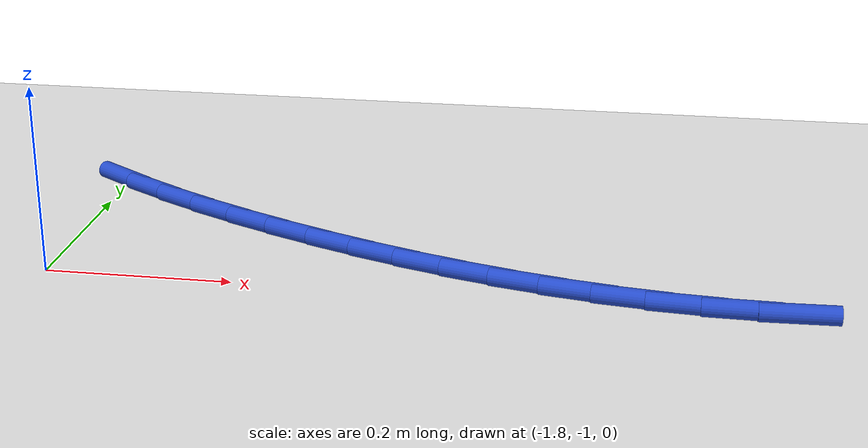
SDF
<sdf version="1.6">
 <world name="default">
  <model name="ground_plane">
   <static>1</static>
   <link name="link">
    <collision name="collision">
     <geometry><plane><normal>0 0 1</normal><size>100 100</size></plane></geometry>
     <surface><friction><ode><mu>100</mu><mu2>50</mu2></ode></friction></surface>
    </collision>
    <visual name="visual">
     <cast_shadows>0</cast_shadows>
     <geometry><plane><normal>0 0 1</normal><size>100 100</size></plane></geometry>
     <material>
      <script><uri>file://media/materials/scripts/gazebo.material</uri><name>Gazebo/WhiteGlow</name></script>
     </material>
    </visual>
   </link>
  </model>
  <model name="line">
   <link name="link_76">
    <pose>-1.800930079560088 -0.743049265808021 0.01 0 1.57 -0.5997430885723822</pose>
    <collision name="collision">
     <geometry><cylinder><radius>0.01</radius><length>0.08</length></cylinder></geometry>
    </collision>
    <visual name="visual">
     <material>
      <script><name>Gazebo/Blue</name><uri>file://media/materials/scripts/gazebo.material</uri></script>
     </material>
     <geometry><cylinder><radius>0.01</radius><length>0.08</length></cylinder></geometry>
    </visual>
   </link>
   <link name="link_77">
    <pose>-1.75485919473331 -0.7745506810042077 0.01 0 1.57 -0.5519705824732061</pose>
    <collision name="collision">
     <geometry><cylinder><radius>0.01</radius><length>0.08</length></cylinder></geometry>
    </collision>
    <visual name="visual">
     <material>
      <script><name>Gazebo/Blue</name><uri>file://media/materials/scripts/gazebo.material</uri></script>
     </material>
     <geometry><cylinder><radius>0.01</radius><length>0.08</length></cylinder></geometry>
    </visual>
   </link>
   <link name="link_78">
    <pose>-1.70699409519617 -0.8040269578421129 0.01 0 1.57 -0.5098072610907443</pose>
    <collision name="collision">
     <geometry><cylinder><radius>0.01</radius><length>0.08</length></cylinder></geometry>
    </collision>
    <visual name="visual">
     <material>
      <script><name>Gazebo/Blue</name><uri>file://media/materials/scripts/gazebo.material</uri></script>
     </material>
     <geometry><cylinder><radius>0.01</radius><length>0.08</length></cylinder></geometry>
    </visual>
   </link>
   <link name="link_79">
    <pose>-1.6577117854093895 -0.8315809781255472 0.01 0 1.57 -0.4727214098440002</pose>
    <collision name="collision">
     <geometry><cylinder><radius>0.01</radius><length>0.08</length></cylinder></geometry>
    </collision>
    <visual name="visual">
     <material>
      <script><name>Gazebo/Blue</name><uri>file://media/materials/scripts/gazebo.material</uri></script>
     </material>
     <geometry><cylinder><radius>0.01</radius><length>0.08</length></cylinder></geometry>
    </visual>
   </link>
   <link name="link_80">
    <pose>-1.6073892698336893 -0.8573156236583225 0.01 0 1.57 -0.44024191962324477</pose>
    <collision name="collision">
     <geometry><cylinder><radius>0.01</radius><length>0.08</length></cylinder></geometry>
    </collision>
    <visual name="visual">
     <material>
      <script><name>Gazebo/Blue</name><uri>file://media/materials/scripts/gazebo.material</uri></script>
     </material>
     <geometry><cylinder><radius>0.01</radius><length>0.08</length></cylinder></geometry>
    </visual>
   </link>
   <link name="link_81">
    <pose>-1.5564035529297897 -0.8813337762442501 0.01 0 1.57 -0.41137872955580856</pose>
    <collision name="collision">
     <geometry><cylinder><radius>0.01</radius><length>0.08</length></cylinder></geometry>
    </collision>
    <visual name="visual">
     <material>
      <script><name>Gazebo/Blue</name><uri>file://media/materials/scripts/gazebo.material</uri></script>
     </material>
     <geometry><cylinder><radius>0.01</radius><length>0.08</length></cylinder></geometry>
    </visual>
   </link>
   <link name="link_82">
    <pose>-1.505098104564522 -0.9037168742839103 0.01 0 1.57 -0.3812926962047439</pose>
    <collision name="collision">
     <geometry><cylinder><radius>0.01</radius><length>0.08</length></cylinder></geometry>
    </collision>
    <visual name="visual">
     <material>
      <script><name>Gazebo/Blue</name><uri>file://media/materials/scripts/gazebo.material</uri></script>
     </material>
     <geometry><cylinder><radius>0.01</radius><length>0.08</length></cylinder></geometry>
    </visual>
   </link>
   <link name="link_83">
    <pose>-1.4535568601850408 -0.9243803991595458 0.01 0 1.57 -0.347756498469362</pose>
    <collision name="collision">
     <geometry><cylinder><radius>0.01</radius><length>0.08</length></cylinder></geometry>
    </collision>
    <visual name="visual">
     <material>
      <script><name>Gazebo/Blue</name><uri>file://media/materials/scripts/gazebo.material</uri></script>
     </material>
     <geometry><cylinder><radius>0.01</radius><length>0.08</length></cylinder></geometry>
    </visual>
   </link>
   <link name="link_84">
    <pose>-1.4017426927867 -0.943162419925744 0.01 0 1.57 -0.3107151630010409</pose>
    <collision name="collision">
     <geometry><cylinder><radius>0.01</radius><length>0.08</length></cylinder></geometry>
    </collision>
    <visual name="visual">
     <material>
      <script><name>Gazebo/Blue</name><uri>file://media/materials/scripts/gazebo.material</uri></script>
     </material>
     <geometry><cylinder><radius>0.01</radius><length>0.08</length></cylinder></geometry>
    </visual>
   </link>
   <link name="link_85">
    <pose>-1.3496177950938741 -0.9599005706437543 0.01 0 1.57 -0.2701675291786436</pose>
    <collision name="collision">
     <geometry><cylinder><radius>0.01</radius><length>0.08</length></cylinder></geometry>
    </collision>
    <visual name="visual">
     <material>
      <script><name>Gazebo/Blue</name><uri>file://media/materials/scripts/gazebo.material</uri></script>
     </material>
     <geometry><cylinder><radius>0.01</radius><length>0.08</length></cylinder></geometry>
    </visual>
   </link>
   <link name="link_86">
    <pose>-1.2971443598309393 -0.9744324853748267 0.01 0 1.57 -0.22616834570236902</pose>
    <collision name="collision">
     <geometry><cylinder><radius>0.01</radius><length>0.08</length></cylinder></geometry>
    </collision>
    <visual name="visual">
     <material>
      <script><name>Gazebo/Blue</name><uri>file://media/materials/scripts/gazebo.material</uri></script>
     </material>
     <geometry><cylinder><radius>0.01</radius><length>0.08</length></cylinder></geometry>
    </visual>
   </link>
   <link name="link_87">
    <pose>-1.2442845797222697 -0.9865957981802114 0.01 0 1.57 -0.17884246231354997</pose>
    <collision name="collision">
     <geometry><cylinder><radius>0.01</radius><length>0.08</length></cylinder></geometry>
    </collision>
    <visual name="visual">
     <material>
      <script><name>Gazebo/Blue</name><uri>file://media/materials/scripts/gazebo.material</uri></script>
     </material>
     <geometry><cylinder><radius>0.01</radius><length>0.08</length></cylinder></geometry>
    </visual>
   </link>
   <link name="link_88">
    <pose>-1.1910006474922403 -0.9962281431211581 0.01 0 1.57 -0.12839748256800512</pose>
    <collision name="collision">
     <geometry><cylinder><radius>0.01</radius><length>0.08</length></cylinder></geometry>
    </collision>
    <visual name="visual">
     <material>
      <script><name>Gazebo/Blue</name><uri>file://media/materials/scripts/gazebo.material</uri></script>
     </material>
     <geometry><cylinder><radius>0.01</radius><length>0.08</length></cylinder></geometry>
    </visual>
   </link>
   <link name="link_89">
    <pose>-1.137254755865226 -1.003167154258917 0.01 0 1.57 -0.0752138547558451</pose>
    <collision name="collision">
     <geometry><cylinder><radius>0.01</radius><length>0.08</length></cylinder></geometry>
    </collision>
    <visual name="visual">
     <material>
      <script><name>Gazebo/Blue</name><uri>file://media/materials/scripts/gazebo.material</uri></script>
     </material>
     <geometry><cylinder><radius>0.01</radius><length>0.08</length></cylinder></geometry>
    </visual>
   </link>
   <link name="link_90">
    <pose>-1.0830138790427746 -1.0072545301959246 0.01 0 1.57 -0.021393098421709743</pose>
    <collision name="collision">
     <geometry><cylinder><radius>0.01</radius><length>0.08</length></cylinder></geometry>
    </collision>
    <visual name="visual">
     <material>
      <script><name>Gazebo/Blue</name><uri>file://media/materials/scripts/gazebo.material</uri></script>
     </material>
     <geometry><cylinder><radius>0.01</radius><length>0.08</length></cylinder></geometry>
    </visual>
   </link>
   <link name="link_91">
    <pose>-1.0283533336287878 -1.0084240670477562 0.01 0 1.57 0.031378632087565236</pose>
    <collision name="collision">
     <geometry><cylinder><radius>0.01</radius><length>0.08</length></cylinder></geometry>
    </collision>
    <visual name="visual">
     <material>
      <script><name>Gazebo/Blue</name><uri>file://media/materials/scripts/gazebo.material</uri></script>
     </material>
     <geometry><cylinder><radius>0.01</radius><length>0.08</length></cylinder></geometry>
    </visual>
   </link>
  </model>
 </world>
</sdf>
